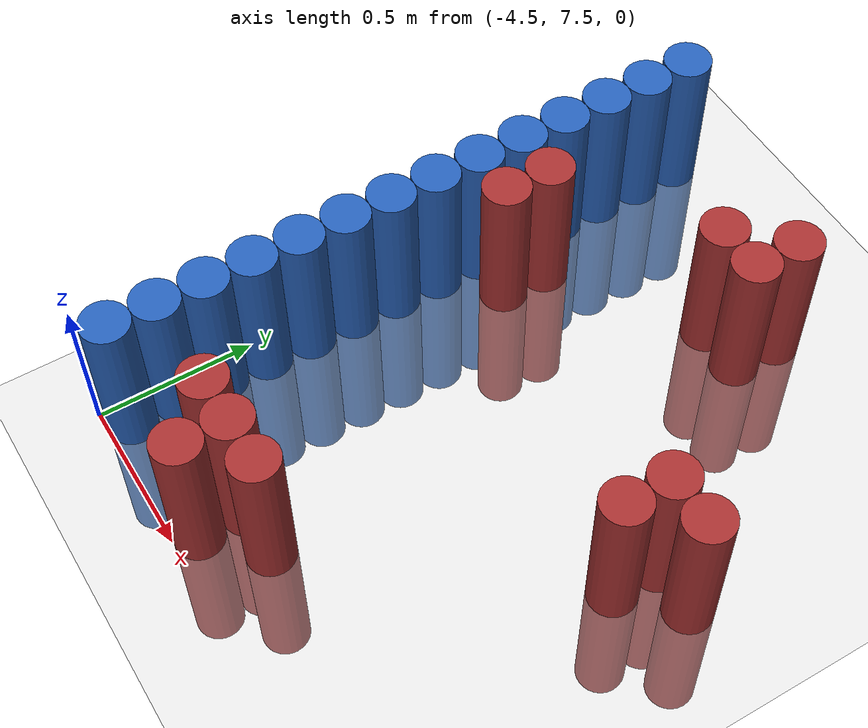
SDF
<sdf version="1.6">
 <world name="barn_world_0">
  <model name="ground_plane">
   <static>1</static>
   <link name="link">
    <collision name="collision">
     <geometry><plane><normal>0 0 1</normal><size>100 100</size></plane></geometry>
     <surface><friction><ode><mu>100</mu><mu2>50</mu2></ode></friction></surface>
    </collision>
    <visual name="visual">
     <cast_shadows>0</cast_shadows>
     <geometry><plane><normal>0 0 1</normal><size>100 100</size></plane></geometry>
     <material>
      <script><uri>file://media/materials/scripts/gazebo.material</uri><name>Gazebo/Grey</name></script>
     </material>
    </visual>
   </link>
  </model>
  <model name="unit_cylinder_112">
   <static>1</static>
   <pose>-4.425000 7.575000 0.000000 0.000000 0.000000 0.000000</pose>
   <link name="link">
    <inertial>
     <mass>1</mass>
     <inertia><ixx>0.145833</ixx><ixy>0</ixy><ixz>0</ixz><iyy>0.145833</iyy><iyz>0</iyz><izz>0.125</izz></inertia>
    </inertial>
    <collision name="collision">
     <geometry><cylinder><radius>0.075000</radius><length>1</length></cylinder></geometry>
    </collision>
    <visual name="visual">
     <geometry><cylinder><radius>0.075000</radius><length>1</length></cylinder></geometry>
     <material>
      <ambient>0.152000 0.379000 0.720000 1</ambient>
      <diffuse>0.152000 0.379000 0.720000 1</diffuse>
     </material>
     <material>
      <script><name>Gazebo/Grey</name><uri>file://media/materials/scripts/gazebo.material</uri></script>
     </material>
    </visual>
   </link>
  </model>
  <model name="unit_cylinder_113">
   <static>1</static>
   <pose>-4.425000 7.725000 0.000000 0.000000 0.000000 0.000000</pose>
   <link name="link">
    <inertial>
     <mass>1</mass>
     <inertia><ixx>0.145833</ixx><ixy>0</ixy><ixz>0</ixz><iyy>0.145833</iyy><iyz>0</iyz><izz>0.125</izz></inertia>
    </inertial>
    <collision name="collision">
     <geometry><cylinder><radius>0.075000</radius><length>1</length></cylinder></geometry>
    </collision>
    <visual name="visual">
     <geometry><cylinder><radius>0.075000</radius><length>1</length></cylinder></geometry>
     <material>
      <ambient>0.152000 0.379000 0.720000 1</ambient>
      <diffuse>0.152000 0.379000 0.720000 1</diffuse>
     </material>
     <material>
      <script><name>Gazebo/Grey</name><uri>file://media/materials/scripts/gazebo.material</uri></script>
     </material>
    </visual>
   </link>
  </model>
  <model name="unit_cylinder_114">
   <static>1</static>
   <pose>-4.425000 7.875000 0.000000 0.000000 0.000000 0.000000</pose>
   <link name="link">
    <inertial>
     <mass>1</mass>
     <inertia><ixx>0.145833</ixx><ixy>0</ixy><ixz>0</ixz><iyy>0.145833</iyy><iyz>0</iyz><izz>0.125</izz></inertia>
    </inertial>
    <collision name="collision">
     <geometry><cylinder><radius>0.075000</radius><length>1</length></cylinder></geometry>
    </collision>
    <visual name="visual">
     <geometry><cylinder><radius>0.075000</radius><length>1</length></cylinder></geometry>
     <material>
      <ambient>0.152000 0.379000 0.720000 1</ambient>
      <diffuse>0.152000 0.379000 0.720000 1</diffuse>
     </material>
     <material>
      <script><name>Gazebo/Grey</name><uri>file://media/materials/scripts/gazebo.material</uri></script>
     </material>
    </visual>
   </link>
  </model>
  <model name="unit_cylinder_115">
   <static>1</static>
   <pose>-4.425000 8.025000 0.000000 0.000000 0.000000 0.000000</pose>
   <link name="link">
    <inertial>
     <mass>1</mass>
     <inertia><ixx>0.145833</ixx><ixy>0</ixy><ixz>0</ixz><iyy>0.145833</iyy><iyz>0</iyz><izz>0.125</izz></inertia>
    </inertial>
    <collision name="collision">
     <geometry><cylinder><radius>0.075000</radius><length>1</length></cylinder></geometry>
    </collision>
    <visual name="visual">
     <geometry><cylinder><radius>0.075000</radius><length>1</length></cylinder></geometry>
     <material>
      <ambient>0.152000 0.379000 0.720000 1</ambient>
      <diffuse>0.152000 0.379000 0.720000 1</diffuse>
     </material>
     <material>
      <script><name>Gazebo/Grey</name><uri>file://media/materials/scripts/gazebo.material</uri></script>
     </material>
    </visual>
   </link>
  </model>
  <model name="unit_cylinder_116">
   <static>1</static>
   <pose>-4.425000 8.175000 0.000000 0.000000 0.000000 0.000000</pose>
   <link name="link">
    <inertial>
     <mass>1</mass>
     <inertia><ixx>0.145833</ixx><ixy>0</ixy><ixz>0</ixz><iyy>0.145833</iyy><iyz>0</iyz><izz>0.125</izz></inertia>
    </inertial>
    <collision name="collision">
     <geometry><cylinder><radius>0.075000</radius><length>1</length></cylinder></geometry>
    </collision>
    <visual name="visual">
     <geometry><cylinder><radius>0.075000</radius><length>1</length></cylinder></geometry>
     <material>
      <ambient>0.152000 0.379000 0.720000 1</ambient>
      <diffuse>0.152000 0.379000 0.720000 1</diffuse>
     </material>
     <material>
      <script><name>Gazebo/Grey</name><uri>file://media/materials/scripts/gazebo.material</uri></script>
     </material>
    </visual>
   </link>
  </model>
  <model name="unit_cylinder_117">
   <static>1</static>
   <pose>-4.425000 8.325000 0.000000 0.000000 0.000000 0.000000</pose>
   <link name="link">
    <inertial>
     <mass>1</mass>
     <inertia><ixx>0.145833</ixx><ixy>0</ixy><ixz>0</ixz><iyy>0.145833</iyy><iyz>0</iyz><izz>0.125</izz></inertia>
    </inertial>
    <collision name="collision">
     <geometry><cylinder><radius>0.075000</radius><length>1</length></cylinder></geometry>
    </collision>
    <visual name="visual">
     <geometry><cylinder><radius>0.075000</radius><length>1</length></cylinder></geometry>
     <material>
      <ambient>0.152000 0.379000 0.720000 1</ambient>
      <diffuse>0.152000 0.379000 0.720000 1</diffuse>
     </material>
     <material>
      <script><name>Gazebo/Grey</name><uri>file://media/materials/scripts/gazebo.material</uri></script>
     </material>
    </visual>
   </link>
  </model>
  <model name="unit_cylinder_118">
   <static>1</static>
   <pose>-4.425000 8.475000 0.000000 0.000000 0.000000 0.000000</pose>
   <link name="link">
    <inertial>
     <mass>1</mass>
     <inertia><ixx>0.145833</ixx><ixy>0</ixy><ixz>0</ixz><iyy>0.145833</iyy><iyz>0</iyz><izz>0.125</izz></inertia>
    </inertial>
    <collision name="collision">
     <geometry><cylinder><radius>0.075000</radius><length>1</length></cylinder></geometry>
    </collision>
    <visual name="visual">
     <geometry><cylinder><radius>0.075000</radius><length>1</length></cylinder></geometry>
     <material>
      <ambient>0.152000 0.379000 0.720000 1</ambient>
      <diffuse>0.152000 0.379000 0.720000 1</diffuse>
     </material>
     <material>
      <script><name>Gazebo/Grey</name><uri>file://media/materials/scripts/gazebo.material</uri></script>
     </material>
    </visual>
   </link>
  </model>
  <model name="unit_cylinder_119">
   <static>1</static>
   <pose>-4.425000 8.625000 0.000000 0.000000 0.000000 0.000000</pose>
   <link name="link">
    <inertial>
     <mass>1</mass>
     <inertia><ixx>0.145833</ixx><ixy>0</ixy><ixz>0</ixz><iyy>0.145833</iyy><iyz>0</iyz><izz>0.125</izz></inertia>
    </inertial>
    <collision name="collision">
     <geometry><cylinder><radius>0.075000</radius><length>1</length></cylinder></geometry>
    </collision>
    <visual name="visual">
     <geometry><cylinder><radius>0.075000</radius><length>1</length></cylinder></geometry>
     <material>
      <ambient>0.152000 0.379000 0.720000 1</ambient>
      <diffuse>0.152000 0.379000 0.720000 1</diffuse>
     </material>
     <material>
      <script><name>Gazebo/Grey</name><uri>file://media/materials/scripts/gazebo.material</uri></script>
     </material>
    </visual>
   </link>
  </model>
  <model name="unit_cylinder_120">
   <static>1</static>
   <pose>-4.425000 8.775000 0.000000 0.000000 0.000000 0.000000</pose>
   <link name="link">
    <inertial>
     <mass>1</mass>
     <inertia><ixx>0.145833</ixx><ixy>0</ixy><ixz>0</ixz><iyy>0.145833</iyy><iyz>0</iyz><izz>0.125</izz></inertia>
    </inertial>
    <collision name="collision">
     <geometry><cylinder><radius>0.075000</radius><length>1</length></cylinder></geometry>
    </collision>
    <visual name="visual">
     <geometry><cylinder><radius>0.075000</radius><length>1</length></cylinder></geometry>
     <material>
      <ambient>0.152000 0.379000 0.720000 1</ambient>
      <diffuse>0.152000 0.379000 0.720000 1</diffuse>
     </material>
     <material>
      <script><name>Gazebo/Grey</name><uri>file://media/materials/scripts/gazebo.material</uri></script>
     </material>
    </visual>
   </link>
  </model>
  <model name="unit_cylinder_121">
   <static>1</static>
   <pose>-4.425000 8.925000 0.000000 0.000000 0.000000 0.000000</pose>
   <link name="link">
    <inertial>
     <mass>1</mass>
     <inertia><ixx>0.145833</ixx><ixy>0</ixy><ixz>0</ixz><iyy>0.145833</iyy><iyz>0</iyz><izz>0.125</izz></inertia>
    </inertial>
    <collision name="collision">
     <geometry><cylinder><radius>0.075000</radius><length>1</length></cylinder></geometry>
    </collision>
    <visual name="visual">
     <geometry><cylinder><radius>0.075000</radius><length>1</length></cylinder></geometry>
     <material>
      <ambient>0.152000 0.379000 0.720000 1</ambient>
      <diffuse>0.152000 0.379000 0.720000 1</diffuse>
     </material>
     <material>
      <script><name>Gazebo/Grey</name><uri>file://media/materials/scripts/gazebo.material</uri></script>
     </material>
    </visual>
   </link>
  </model>
  <model name="unit_cylinder_122">
   <static>1</static>
   <pose>-4.425000 9.075000 0.000000 0.000000 0.000000 0.000000</pose>
   <link name="link">
    <inertial>
     <mass>1</mass>
     <inertia><ixx>0.145833</ixx><ixy>0</ixy><ixz>0</ixz><iyy>0.145833</iyy><iyz>0</iyz><izz>0.125</izz></inertia>
    </inertial>
    <collision name="collision">
     <geometry><cylinder><radius>0.075000</radius><length>1</length></cylinder></geometry>
    </collision>
    <visual name="visual">
     <geometry><cylinder><radius>0.075000</radius><length>1</length></cylinder></geometry>
     <material>
      <ambient>0.152000 0.379000 0.720000 1</ambient>
      <diffuse>0.152000 0.379000 0.720000 1</diffuse>
     </material>
     <material>
      <script><name>Gazebo/Grey</name><uri>file://media/materials/scripts/gazebo.material</uri></script>
     </material>
    </visual>
   </link>
  </model>
  <model name="unit_cylinder_123">
   <static>1</static>
   <pose>-4.425000 9.225000 0.000000 0.000000 0.000000 0.000000</pose>
   <link name="link">
    <inertial>
     <mass>1</mass>
     <inertia><ixx>0.145833</ixx><ixy>0</ixy><ixz>0</ixz><iyy>0.145833</iyy><iyz>0</iyz><izz>0.125</izz></inertia>
    </inertial>
    <collision name="collision">
     <geometry><cylinder><radius>0.075000</radius><length>1</length></cylinder></geometry>
    </collision>
    <visual name="visual">
     <geometry><cylinder><radius>0.075000</radius><length>1</length></cylinder></geometry>
     <material>
      <ambient>0.152000 0.379000 0.720000 1</ambient>
      <diffuse>0.152000 0.379000 0.720000 1</diffuse>
     </material>
     <material>
      <script><name>Gazebo/Grey</name><uri>file://media/materials/scripts/gazebo.material</uri></script>
     </material>
    </visual>
   </link>
  </model>
  <model name="unit_cylinder_124">
   <static>1</static>
   <pose>-4.425000 9.375000 0.000000 0.000000 0.000000 0.000000</pose>
   <link name="link">
    <inertial>
     <mass>1</mass>
     <inertia><ixx>0.145833</ixx><ixy>0</ixy><ixz>0</ixz><iyy>0.145833</iyy><iyz>0</iyz><izz>0.125</izz></inertia>
    </inertial>
    <collision name="collision">
     <geometry><cylinder><radius>0.075000</radius><length>1</length></cylinder></geometry>
    </collision>
    <visual name="visual">
     <geometry><cylinder><radius>0.075000</radius><length>1</length></cylinder></geometry>
     <material>
      <ambient>0.152000 0.379000 0.720000 1</ambient>
      <diffuse>0.152000 0.379000 0.720000 1</diffuse>
     </material>
     <material>
      <script><name>Gazebo/Grey</name><uri>file://media/materials/scripts/gazebo.material</uri></script>
     </material>
    </visual>
   </link>
  </model>
  <model name="unit_cylinder_125">
   <static>1</static>
   <pose>-4.425000 9.525000 0.000000 0.000000 0.000000 0.000000</pose>
   <link name="link">
    <inertial>
     <mass>1</mass>
     <inertia><ixx>0.145833</ixx><ixy>0</ixy><ixz>0</ixz><iyy>0.145833</iyy><iyz>0</iyz><izz>0.125</izz></inertia>
    </inertial>
    <collision name="collision">
     <geometry><cylinder><radius>0.075000</radius><length>1</length></cylinder></geometry>
    </collision>
    <visual name="visual">
     <geometry><cylinder><radius>0.075000</radius><length>1</length></cylinder></geometry>
     <material>
      <ambient>0.152000 0.379000 0.720000 1</ambient>
      <diffuse>0.152000 0.379000 0.720000 1</diffuse>
     </material>
     <material>
      <script><name>Gazebo/Grey</name><uri>file://media/materials/scripts/gazebo.material</uri></script>
     </material>
    </visual>
   </link>
  </model>
  <model name="unit_cylinder_131">
   <static>1</static>
   <pose>-4.275000 8.775000 0.000000 0.000000 0.000000 0.000000</pose>
   <link name="link">
    <inertial>
     <mass>1</mass>
     <inertia><ixx>0.145833</ixx><ixy>0</ixy><ixz>0</ixz><iyy>0.145833</iyy><iyz>0</iyz><izz>0.125</izz></inertia>
    </inertial>
    <collision name="collision">
     <geometry><cylinder><radius>0.075000</radius><length>1</length></cylinder></geometry>
    </collision>
    <visual name="visual">
     <geometry><cylinder><radius>0.075000</radius><length>1</length></cylinder></geometry>
     <material>
      <ambient>0.648000 0.192000 0.192000 1</ambient>
      <diffuse>0.648000 0.192000 0.192000 1</diffuse>
     </material>
     <material>
      <script><name>Gazebo/Grey</name><uri>file://media/materials/scripts/gazebo.material</uri></script>
     </material>
    </visual>
   </link>
  </model>
  <model name="unit_cylinder_132">
   <static>1</static>
   <pose>-4.275000 8.925000 0.000000 0.000000 0.000000 0.000000</pose>
   <link name="link">
    <inertial>
     <mass>1</mass>
     <inertia><ixx>0.145833</ixx><ixy>0</ixy><ixz>0</ixz><iyy>0.145833</iyy><iyz>0</iyz><izz>0.125</izz></inertia>
    </inertial>
    <collision name="collision">
     <geometry><cylinder><radius>0.075000</radius><length>1</length></cylinder></geometry>
    </collision>
    <visual name="visual">
     <geometry><cylinder><radius>0.075000</radius><length>1</length></cylinder></geometry>
     <material>
      <ambient>0.648000 0.192000 0.192000 1</ambient>
      <diffuse>0.648000 0.192000 0.192000 1</diffuse>
     </material>
     <material>
      <script><name>Gazebo/Grey</name><uri>file://media/materials/scripts/gazebo.material</uri></script>
     </material>
    </visual>
   </link>
  </model>
  <model name="unit_cylinder_134">
   <static>1</static>
   <pose>-4.125000 7.725000 0.000000 0.000000 0.000000 0.000000</pose>
   <link name="link">
    <inertial>
     <mass>1</mass>
     <inertia><ixx>0.145833</ixx><ixy>0</ixy><ixz>0</ixz><iyy>0.145833</iyy><iyz>0</iyz><izz>0.125</izz></inertia>
    </inertial>
    <collision name="collision">
     <geometry><cylinder><radius>0.075000</radius><length>1</length></cylinder></geometry>
    </collision>
    <visual name="visual">
     <geometry><cylinder><radius>0.075000</radius><length>1</length></cylinder></geometry>
     <material>
      <ambient>0.648000 0.192000 0.192000 1</ambient>
      <diffuse>0.648000 0.192000 0.192000 1</diffuse>
     </material>
     <material>
      <script><name>Gazebo/Grey</name><uri>file://media/materials/scripts/gazebo.material</uri></script>
     </material>
    </visual>
   </link>
  </model>
  <model name="unit_cylinder_135">
   <static>1</static>
   <pose>-3.975000 7.575000 0.000000 0.000000 0.000000 0.000000</pose>
   <link name="link">
    <inertial>
     <mass>1</mass>
     <inertia><ixx>0.145833</ixx><ixy>0</ixy><ixz>0</ixz><iyy>0.145833</iyy><iyz>0</iyz><izz>0.125</izz></inertia>
    </inertial>
    <collision name="collision">
     <geometry><cylinder><radius>0.075000</radius><length>1</length></cylinder></geometry>
    </collision>
    <visual name="visual">
     <geometry><cylinder><radius>0.075000</radius><length>1</length></cylinder></geometry>
     <material>
      <ambient>0.648000 0.192000 0.192000 1</ambient>
      <diffuse>0.648000 0.192000 0.192000 1</diffuse>
     </material>
     <material>
      <script><name>Gazebo/Grey</name><uri>file://media/materials/scripts/gazebo.material</uri></script>
     </material>
    </visual>
   </link>
  </model>
  <model name="unit_cylinder_136">
   <static>1</static>
   <pose>-3.975000 7.725000 0.000000 0.000000 0.000000 0.000000</pose>
   <link name="link">
    <inertial>
     <mass>1</mass>
     <inertia><ixx>0.145833</ixx><ixy>0</ixy><ixz>0</ixz><iyy>0.145833</iyy><iyz>0</iyz><izz>0.125</izz></inertia>
    </inertial>
    <collision name="collision">
     <geometry><cylinder><radius>0.075000</radius><length>1</length></cylinder></geometry>
    </collision>
    <visual name="visual">
     <geometry><cylinder><radius>0.075000</radius><length>1</length></cylinder></geometry>
     <material>
      <ambient>0.648000 0.192000 0.192000 1</ambient>
      <diffuse>0.648000 0.192000 0.192000 1</diffuse>
     </material>
     <material>
      <script><name>Gazebo/Grey</name><uri>file://media/materials/scripts/gazebo.material</uri></script>
     </material>
    </visual>
   </link>
  </model>
  <model name="unit_cylinder_137">
   <static>1</static>
   <pose>-3.825000 7.725000 0.000000 0.000000 0.000000 0.000000</pose>
   <link name="link">
    <inertial>
     <mass>1</mass>
     <inertia><ixx>0.145833</ixx><ixy>0</ixy><ixz>0</ixz><iyy>0.145833</iyy><iyz>0</iyz><izz>0.125</izz></inertia>
    </inertial>
    <collision name="collision">
     <geometry><cylinder><radius>0.075000</radius><length>1</length></cylinder></geometry>
    </collision>
    <visual name="visual">
     <geometry><cylinder><radius>0.075000</radius><length>1</length></cylinder></geometry>
     <material>
      <ambient>0.648000 0.192000 0.192000 1</ambient>
      <diffuse>0.648000 0.192000 0.192000 1</diffuse>
     </material>
     <material>
      <script><name>Gazebo/Grey</name><uri>file://media/materials/scripts/gazebo.material</uri></script>
     </material>
    </visual>
   </link>
  </model>
  <model name="unit_cylinder_138">
   <static>1</static>
   <pose>-3.825000 9.225000 0.000000 0.000000 0.000000 0.000000</pose>
   <link name="link">
    <inertial>
     <mass>1</mass>
     <inertia><ixx>0.145833</ixx><ixy>0</ixy><ixz>0</ixz><iyy>0.145833</iyy><iyz>0</iyz><izz>0.125</izz></inertia>
    </inertial>
    <collision name="collision">
     <geometry><cylinder><radius>0.075000</radius><length>1</length></cylinder></geometry>
    </collision>
    <visual name="visual">
     <geometry><cylinder><radius>0.075000</radius><length>1</length></cylinder></geometry>
     <material>
      <ambient>0.648000 0.192000 0.192000 1</ambient>
      <diffuse>0.648000 0.192000 0.192000 1</diffuse>
     </material>
     <material>
      <script><name>Gazebo/Grey</name><uri>file://media/materials/scripts/gazebo.material</uri></script>
     </material>
    </visual>
   </link>
  </model>
  <model name="unit_cylinder_141">
   <static>1</static>
   <pose>-3.675000 9.225000 0.000000 0.000000 0.000000 0.000000</pose>
   <link name="link">
    <inertial>
     <mass>1</mass>
     <inertia><ixx>0.145833</ixx><ixy>0</ixy><ixz>0</ixz><iyy>0.145833</iyy><iyz>0</iyz><izz>0.125</izz></inertia>
    </inertial>
    <collision name="collision">
     <geometry><cylinder><radius>0.075000</radius><length>1</length></cylinder></geometry>
    </collision>
    <visual name="visual">
     <geometry><cylinder><radius>0.075000</radius><length>1</length></cylinder></geometry>
     <material>
      <ambient>0.648000 0.192000 0.192000 1</ambient>
      <diffuse>0.648000 0.192000 0.192000 1</diffuse>
     </material>
     <material>
      <script><name>Gazebo/Grey</name><uri>file://media/materials/scripts/gazebo.material</uri></script>
     </material>
    </visual>
   </link>
  </model>
  <model name="unit_cylinder_142">
   <static>1</static>
   <pose>-3.675000 9.375000 0.000000 0.000000 0.000000 0.000000</pose>
   <link name="link">
    <inertial>
     <mass>1</mass>
     <inertia><ixx>0.145833</ixx><ixy>0</ixy><ixz>0</ixz><iyy>0.145833</iyy><iyz>0</iyz><izz>0.125</izz></inertia>
    </inertial>
    <collision name="collision">
     <geometry><cylinder><radius>0.075000</radius><length>1</length></cylinder></geometry>
    </collision>
    <visual name="visual">
     <geometry><cylinder><radius>0.075000</radius><length>1</length></cylinder></geometry>
     <material>
      <ambient>0.648000 0.192000 0.192000 1</ambient>
      <diffuse>0.648000 0.192000 0.192000 1</diffuse>
     </material>
     <material>
      <script><name>Gazebo/Grey</name><uri>file://media/materials/scripts/gazebo.material</uri></script>
     </material>
    </visual>
   </link>
  </model>
  <model name="unit_cylinder_144">
   <static>1</static>
   <pose>-3.225000 8.475000 0.000000 0.000000 0.000000 0.000000</pose>
   <link name="link">
    <inertial>
     <mass>1</mass>
     <inertia><ixx>0.145833</ixx><ixy>0</ixy><ixz>0</ixz><iyy>0.145833</iyy><iyz>0</iyz><izz>0.125</izz></inertia>
    </inertial>
    <collision name="collision">
     <geometry><cylinder><radius>0.075000</radius><length>1</length></cylinder></geometry>
    </collision>
    <visual name="visual">
     <geometry><cylinder><radius>0.075000</radius><length>1</length></cylinder></geometry>
     <material>
      <ambient>0.648000 0.192000 0.192000 1</ambient>
      <diffuse>0.648000 0.192000 0.192000 1</diffuse>
     </material>
     <material>
      <script><name>Gazebo/Grey</name><uri>file://media/materials/scripts/gazebo.material</uri></script>
     </material>
    </visual>
   </link>
  </model>
  <model name="unit_cylinder_145">
   <static>1</static>
   <pose>-3.225000 8.625000 0.000000 0.000000 0.000000 0.000000</pose>
   <link name="link">
    <inertial>
     <mass>1</mass>
     <inertia><ixx>0.145833</ixx><ixy>0</ixy><ixz>0</ixz><iyy>0.145833</iyy><iyz>0</iyz><izz>0.125</izz></inertia>
    </inertial>
    <collision name="collision">
     <geometry><cylinder><radius>0.075000</radius><length>1</length></cylinder></geometry>
    </collision>
    <visual name="visual">
     <geometry><cylinder><radius>0.075000</radius><length>1</length></cylinder></geometry>
     <material>
      <ambient>0.648000 0.192000 0.192000 1</ambient>
      <diffuse>0.648000 0.192000 0.192000 1</diffuse>
     </material>
     <material>
      <script><name>Gazebo/Grey</name><uri>file://media/materials/scripts/gazebo.material</uri></script>
     </material>
    </visual>
   </link>
  </model>
  <model name="unit_cylinder_146">
   <static>1</static>
   <pose>-3.075000 8.625000 0.000000 0.000000 0.000000 0.000000</pose>
   <link name="link">
    <inertial>
     <mass>1</mass>
     <inertia><ixx>0.145833</ixx><ixy>0</ixy><ixz>0</ixz><iyy>0.145833</iyy><iyz>0</iyz><izz>0.125</izz></inertia>
    </inertial>
    <collision name="collision">
     <geometry><cylinder><radius>0.075000</radius><length>1</length></cylinder></geometry>
    </collision>
    <visual name="visual">
     <geometry><cylinder><radius>0.075000</radius><length>1</length></cylinder></geometry>
     <material>
      <ambient>0.648000 0.192000 0.192000 1</ambient>
      <diffuse>0.648000 0.192000 0.192000 1</diffuse>
     </material>
     <material>
      <script><name>Gazebo/Grey</name><uri>file://media/materials/scripts/gazebo.material</uri></script>
     </material>
    </visual>
   </link>
  </model>
 </world>
</sdf>
